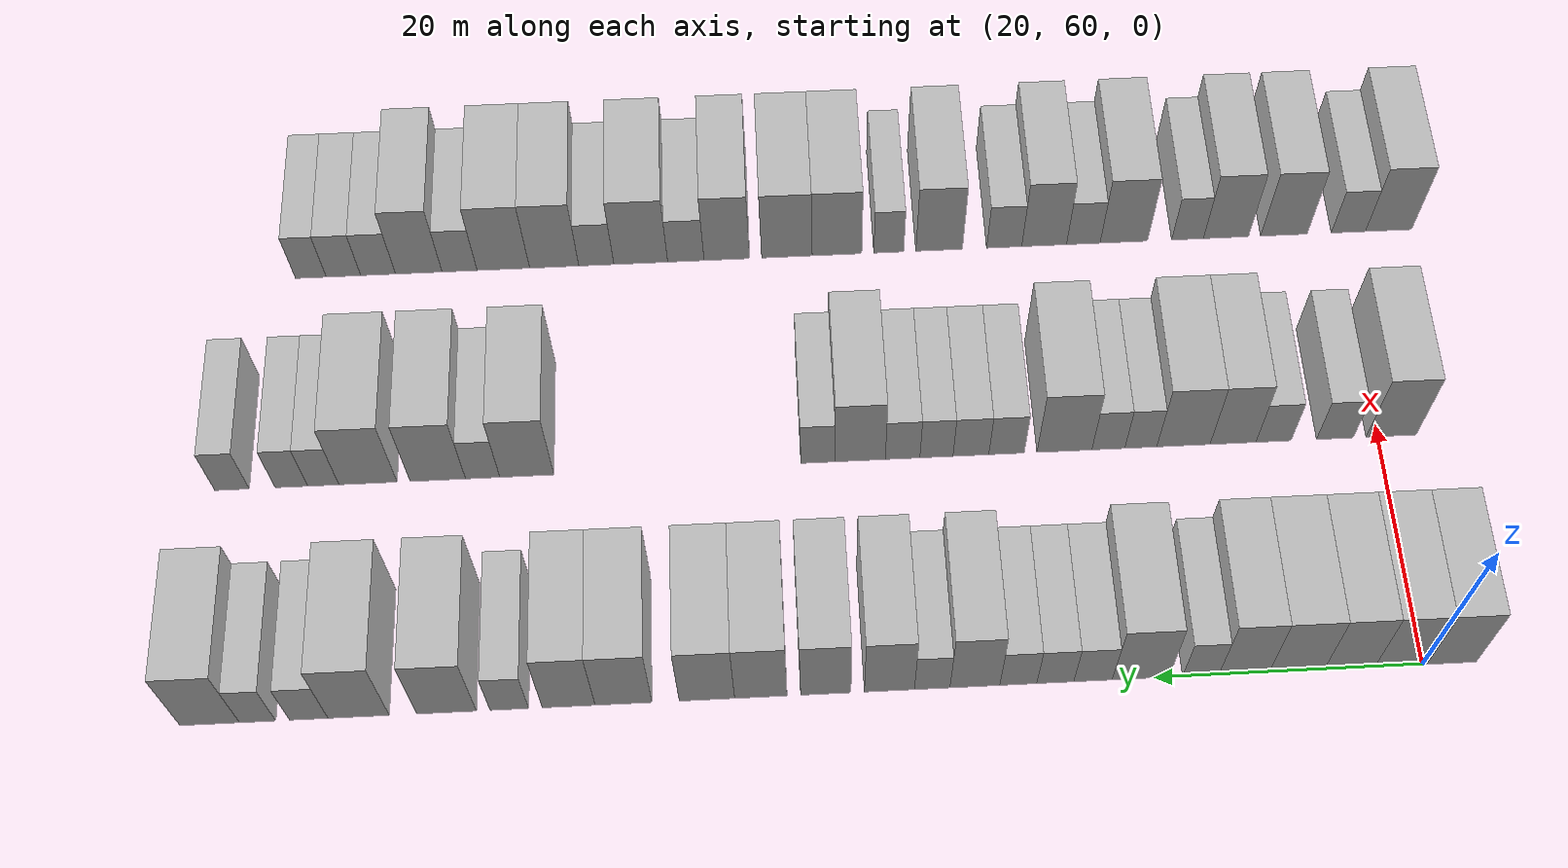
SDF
<sdf version="1.6">
 <world name="default">
  <model name="building_71">
   <static>1</static>
   <pose>25.0000 57.8908 0 0.000000 0.000000 0.000000</pose>
   <link name="link">
    <pose>0 0 4.50 0 0 0</pose>
    <collision name="collision"><geometry><box><size>10.0000 3.6938 9.0000</size></box></geometry></collision>
    <visual name="visual">
     <cast_shadows>0</cast_shadows>
     <geometry><box><size>10.0000 3.6938 9.0000</size></box></geometry>
     <material>
      <script>
       <uri>model://HANNAS_wall/materials/scripts</uri>
       <uri>model://HANNAS_wall/materials/textures</uri>
       <name>vrc/HANNAS_wall</name>
      </script>
     </material>
    </visual>
   </link>
  </model>
  <model name="building_72">
   <static>1</static>
   <pose>25.0000 61.6819 0 0.000000 0.000000 0.000000</pose>
   <link name="link">
    <pose>0 0 4.50 0 0 0</pose>
    <collision name="collision"><geometry><box><size>10.0000 3.8883 9.0000</size></box></geometry></collision>
    <visual name="visual">
     <cast_shadows>0</cast_shadows>
     <geometry><box><size>10.0000 3.8883 9.0000</size></box></geometry>
     <material>
      <script>
       <uri>model://HANNAS_wall/materials/scripts</uri>
       <uri>model://HANNAS_wall/materials/textures</uri>
       <name>vrc/HANNAS_wall</name>
      </script>
     </material>
    </visual>
   </link>
  </model>
  <model name="building_73">
   <static>1</static>
   <pose>25.0000 65.5108 0 0.000000 0.000000 0.000000</pose>
   <link name="link">
    <pose>0 0 4.50 0 0 0</pose>
    <collision name="collision"><geometry><box><size>10.0000 3.7694 9.0000</size></box></geometry></collision>
    <visual name="visual">
     <cast_shadows>0</cast_shadows>
     <geometry><box><size>10.0000 3.7694 9.0000</size></box></geometry>
     <material>
      <script>
       <uri>model://HANNAS_wall/materials/scripts</uri>
       <uri>model://HANNAS_wall/materials/textures</uri>
       <name>vrc/HANNAS_wall</name>
      </script>
     </material>
    </visual>
   </link>
  </model>
  <model name="building_74">
   <static>1</static>
   <pose>25.0000 69.4506 0 0.000000 0.000000 0.000000</pose>
   <link name="link">
    <pose>0 0 4.50 0 0 0</pose>
    <collision name="collision"><geometry><box><size>10.0000 4.1102 9.0000</size></box></geometry></collision>
    <visual name="visual">
     <cast_shadows>0</cast_shadows>
     <geometry><box><size>10.0000 4.1102 9.0000</size></box></geometry>
     <material>
      <script>
       <uri>model://HANNAS_wall/materials/scripts</uri>
       <uri>model://HANNAS_wall/materials/textures</uri>
       <name>vrc/HANNAS_wall</name>
      </script>
     </material>
    </visual>
   </link>
  </model>
  <model name="building_75">
   <static>1</static>
   <pose>25.0000 73.3711 0 0.000000 0.000000 0.000000</pose>
   <link name="link">
    <pose>0 0 4.50 0 0 0</pose>
    <collision name="collision"><geometry><box><size>10.0000 3.7309 9.0000</size></box></geometry></collision>
    <visual name="visual">
     <cast_shadows>0</cast_shadows>
     <geometry><box><size>10.0000 3.7309 9.0000</size></box></geometry>
     <material>
      <script>
       <uri>model://HANNAS_wall/materials/scripts</uri>
       <uri>model://HANNAS_wall/materials/textures</uri>
       <name>vrc/HANNAS_wall</name>
      </script>
     </material>
    </visual>
   </link>
  </model>
  <model name="building_76">
   <static>1</static>
   <pose>25.0000 76.5821 0 0.000000 0.000000 0.000000</pose>
   <link name="link">
    <pose>0 0 3.00 0 0 0</pose>
    <collision name="collision"><geometry><box><size>10.0000 2.6911 6.0000</size></box></geometry></collision>
    <visual name="visual">
     <cast_shadows>0</cast_shadows>
     <geometry><box><size>10.0000 2.6911 6.0000</size></box></geometry>
     <material>
      <script>
       <uri>model://HANNAS_wall/materials/scripts</uri>
       <uri>model://HANNAS_wall/materials/textures</uri>
       <name>vrc/HANNAS_wall</name>
      </script>
     </material>
    </visual>
   </link>
  </model>
  <model name="building_77">
   <static>1</static>
   <pose>25.0000 81.0387 0 0.000000 0.000000 0.000000</pose>
   <link name="link">
    <pose>0 0 4.50 0 0 0</pose>
    <collision name="collision"><geometry><box><size>10.0000 4.2220 9.0000</size></box></geometry></collision>
    <visual name="visual">
     <cast_shadows>0</cast_shadows>
     <geometry><box><size>10.0000 4.2220 9.0000</size></box></geometry>
     <material>
      <script>
       <uri>model://HANNAS_wall/materials/scripts</uri>
       <uri>model://HANNAS_wall/materials/textures</uri>
       <name>vrc/HANNAS_wall</name>
      </script>
     </material>
    </visual>
   </link>
  </model>
  <model name="building_78">
   <static>1</static>
   <pose>25.0000 84.5726 0 0.000000 0.000000 0.000000</pose>
   <link name="link">
    <pose>0 0 3.00 0 0 0</pose>
    <collision name="collision"><geometry><box><size>10.0000 2.8459 6.0000</size></box></geometry></collision>
    <visual name="visual">
     <cast_shadows>0</cast_shadows>
     <geometry><box><size>10.0000 2.8459 6.0000</size></box></geometry>
     <material>
      <script>
       <uri>model://HANNAS_wall/materials/scripts</uri>
       <uri>model://HANNAS_wall/materials/textures</uri>
       <name>vrc/HANNAS_wall</name>
      </script>
     </material>
    </visual>
   </link>
  </model>
  <model name="building_79">
   <static>1</static>
   <pose>25.0000 87.3659 0 0.000000 0.000000 0.000000</pose>
   <link name="link">
    <pose>0 0 3.00 0 0 0</pose>
    <collision name="collision"><geometry><box><size>10.0000 2.7407 6.0000</size></box></geometry></collision>
    <visual name="visual">
     <cast_shadows>0</cast_shadows>
     <geometry><box><size>10.0000 2.7407 6.0000</size></box></geometry>
     <material>
      <script>
       <uri>model://HANNAS_wall/materials/scripts</uri>
       <uri>model://HANNAS_wall/materials/textures</uri>
       <name>vrc/HANNAS_wall</name>
      </script>
     </material>
    </visual>
   </link>
  </model>
  <model name="building_80">
   <static>1</static>
   <pose>25.0000 90.1047 0 0.000000 0.000000 0.000000</pose>
   <link name="link">
    <pose>0 0 3.00 0 0 0</pose>
    <collision name="collision"><geometry><box><size>10.0000 2.7368 6.0000</size></box></geometry></collision>
    <visual name="visual">
     <cast_shadows>0</cast_shadows>
     <geometry><box><size>10.0000 2.7368 6.0000</size></box></geometry>
     <material>
      <script>
       <uri>model://HANNAS_wall/materials/scripts</uri>
       <uri>model://HANNAS_wall/materials/textures</uri>
       <name>vrc/HANNAS_wall</name>
      </script>
     </material>
    </visual>
   </link>
  </model>
  <model name="building_81">
   <static>1</static>
   <pose>25.0000 93.3152 0 0.000000 0.000000 0.000000</pose>
   <link name="link">
    <pose>0 0 4.50 0 0 0</pose>
    <collision name="collision"><geometry><box><size>10.0000 3.6842 9.0000</size></box></geometry></collision>
    <visual name="visual">
     <cast_shadows>0</cast_shadows>
     <geometry><box><size>10.0000 3.6842 9.0000</size></box></geometry>
     <material>
      <script>
       <uri>model://HANNAS_wall/materials/scripts</uri>
       <uri>model://HANNAS_wall/materials/textures</uri>
       <name>vrc/HANNAS_wall</name>
      </script>
     </material>
    </visual>
   </link>
  </model>
  <model name="building_82">
   <static>1</static>
   <pose>25.0000 96.4642 0 0.000000 0.000000 0.000000</pose>
   <link name="link">
    <pose>0 0 3.00 0 0 0</pose>
    <collision name="collision"><geometry><box><size>10.0000 2.6138 6.0000</size></box></geometry></collision>
    <visual name="visual">
     <cast_shadows>0</cast_shadows>
     <geometry><box><size>10.0000 2.6138 6.0000</size></box></geometry>
     <material>
      <script>
       <uri>model://HANNAS_wall/materials/scripts</uri>
       <uri>model://HANNAS_wall/materials/textures</uri>
       <name>vrc/HANNAS_wall</name>
      </script>
     </material>
    </visual>
   </link>
  </model>
  <model name="building_83">
   <static>1</static>
   <pose>25.0000 99.6112 0 0.000000 0.000000 0.000000</pose>
   <link name="link">
    <pose>0 0 4.50 0 0 0</pose>
    <collision name="collision"><geometry><box><size>10.0000 3.6802 9.0000</size></box></geometry></collision>
    <visual name="visual">
     <cast_shadows>0</cast_shadows>
     <geometry><box><size>10.0000 3.6802 9.0000</size></box></geometry>
     <material>
      <script>
       <uri>model://HANNAS_wall/materials/scripts</uri>
       <uri>model://HANNAS_wall/materials/textures</uri>
       <name>vrc/HANNAS_wall</name>
      </script>
     </material>
    </visual>
   </link>
  </model>
  <model name="building_84">
   <static>1</static>
   <pose>25.0000 104.2968 0 0.000000 0.000000 0.000000</pose>
   <link name="link">
    <pose>0 0 4.50 0 0 0</pose>
    <collision name="collision"><geometry><box><size>10.0000 3.6910 9.0000</size></box></geometry></collision>
    <visual name="visual">
     <cast_shadows>0</cast_shadows>
     <geometry><box><size>10.0000 3.6910 9.0000</size></box></geometry>
     <material>
      <script>
       <uri>model://HANNAS_wall/materials/scripts</uri>
       <uri>model://HANNAS_wall/materials/textures</uri>
       <name>vrc/HANNAS_wall</name>
      </script>
     </material>
    </visual>
   </link>
  </model>
  <model name="building_85">
   <static>1</static>
   <pose>25.0000 109.0696 0 0.000000 0.000000 0.000000</pose>
   <link name="link">
    <pose>0 0 4.50 0 0 0</pose>
    <collision name="collision"><geometry><box><size>10.0000 3.8547 9.0000</size></box></geometry></collision>
    <visual name="visual">
     <cast_shadows>0</cast_shadows>
     <geometry><box><size>10.0000 3.8547 9.0000</size></box></geometry>
     <material>
      <script>
       <uri>model://HANNAS_wall/materials/scripts</uri>
       <uri>model://HANNAS_wall/materials/textures</uri>
       <name>vrc/HANNAS_wall</name>
      </script>
     </material>
    </visual>
   </link>
  </model>
  <model name="building_86">
   <static>1</static>
   <pose>25.0000 113.0264 0 0.000000 0.000000 0.000000</pose>
   <link name="link">
    <pose>0 0 4.50 0 0 0</pose>
    <collision name="collision"><geometry><box><size>10.0000 4.0589 9.0000</size></box></geometry></collision>
    <visual name="visual">
     <cast_shadows>0</cast_shadows>
     <geometry><box><size>10.0000 4.0589 9.0000</size></box></geometry>
     <material>
      <script>
       <uri>model://HANNAS_wall/materials/scripts</uri>
       <uri>model://HANNAS_wall/materials/textures</uri>
       <name>vrc/HANNAS_wall</name>
      </script>
     </material>
    </visual>
   </link>
  </model>
  <model name="building_87">
   <static>1</static>
   <pose>25.0000 119.1386 0 0.000000 0.000000 0.000000</pose>
   <link name="link">
    <pose>0 0 4.50 0 0 0</pose>
    <collision name="collision"><geometry><box><size>10.0000 4.1654 9.0000</size></box></geometry></collision>
    <visual name="visual">
     <cast_shadows>0</cast_shadows>
     <geometry><box><size>10.0000 4.1654 9.0000</size></box></geometry>
     <material>
      <script>
       <uri>model://HANNAS_wall/materials/scripts</uri>
       <uri>model://HANNAS_wall/materials/textures</uri>
       <name>vrc/HANNAS_wall</name>
      </script>
     </material>
    </visual>
   </link>
  </model>
  <model name="building_88">
   <static>1</static>
   <pose>25.0000 123.1504 0 0.000000 0.000000 0.000000</pose>
   <link name="link">
    <pose>0 0 4.50 0 0 0</pose>
    <collision name="collision"><geometry><box><size>10.0000 3.8581 9.0000</size></box></geometry></collision>
    <visual name="visual">
     <cast_shadows>0</cast_shadows>
     <geometry><box><size>10.0000 3.8581 9.0000</size></box></geometry>
     <material>
      <script>
       <uri>model://HANNAS_wall/materials/scripts</uri>
       <uri>model://HANNAS_wall/materials/textures</uri>
       <name>vrc/HANNAS_wall</name>
      </script>
     </material>
    </visual>
   </link>
  </model>
  <model name="building_89">
   <static>1</static>
   <pose>25.0000 127.4863 0 0.000000 0.000000 0.000000</pose>
   <link name="link">
    <pose>0 0 3.00 0 0 0</pose>
    <collision name="collision"><geometry><box><size>10.0000 2.8137 6.0000</size></box></geometry></collision>
    <visual name="visual">
     <cast_shadows>0</cast_shadows>
     <geometry><box><size>10.0000 2.8137 6.0000</size></box></geometry>
     <material>
      <script>
       <uri>model://HANNAS_wall/materials/scripts</uri>
       <uri>model://HANNAS_wall/materials/textures</uri>
       <name>vrc/HANNAS_wall</name>
      </script>
     </material>
    </visual>
   </link>
  </model>
  <model name="building_90">
   <static>1</static>
   <pose>25.0000 132.0710 0 0.000000 0.000000 0.000000</pose>
   <link name="link">
    <pose>0 0 4.50 0 0 0</pose>
    <collision name="collision"><geometry><box><size>10.0000 4.3558 9.0000</size></box></geometry></collision>
    <visual name="visual">
     <cast_shadows>0</cast_shadows>
     <geometry><box><size>10.0000 4.3558 9.0000</size></box></geometry>
     <material>
      <script>
       <uri>model://HANNAS_wall/materials/scripts</uri>
       <uri>model://HANNAS_wall/materials/textures</uri>
       <name>vrc/HANNAS_wall</name>
      </script>
     </material>
    </visual>
   </link>
  </model>
  <model name="building_91">
   <static>1</static>
   <pose>25.0000 138.4762 0 0.000000 0.000000 0.000000</pose>
   <link name="link">
    <pose>0 0 4.50 0 0 0</pose>
    <collision name="collision"><geometry><box><size>10.0000 4.4545 9.0000</size></box></geometry></collision>
    <visual name="visual">
     <cast_shadows>0</cast_shadows>
     <geometry><box><size>10.0000 4.4545 9.0000</size></box></geometry>
     <material>
      <script>
       <uri>model://HANNAS_wall/materials/scripts</uri>
       <uri>model://HANNAS_wall/materials/textures</uri>
       <name>vrc/HANNAS_wall</name>
      </script>
     </material>
    </visual>
   </link>
  </model>
  <model name="building_92">
   <static>1</static>
   <pose>25.0000 142.1031 0 0.000000 0.000000 0.000000</pose>
   <link name="link">
    <pose>0 0 3.00 0 0 0</pose>
    <collision name="collision"><geometry><box><size>10.0000 2.7995 6.0000</size></box></geometry></collision>
    <visual name="visual">
     <cast_shadows>0</cast_shadows>
     <geometry><box><size>10.0000 2.7995 6.0000</size></box></geometry>
     <material>
      <script>
       <uri>model://HANNAS_wall/materials/scripts</uri>
       <uri>model://HANNAS_wall/materials/textures</uri>
       <name>vrc/HANNAS_wall</name>
      </script>
     </material>
    </visual>
   </link>
  </model>
  <model name="building_93">
   <static>1</static>
   <pose>25.0000 145.8149 0 0.000000 0.000000 0.000000</pose>
   <link name="link">
    <pose>0 0 3.00 0 0 0</pose>
    <collision name="collision"><geometry><box><size>10.0000 2.6241 6.0000</size></box></geometry></collision>
    <visual name="visual">
     <cast_shadows>0</cast_shadows>
     <geometry><box><size>10.0000 2.6241 6.0000</size></box></geometry>
     <material>
      <script>
       <uri>model://HANNAS_wall/materials/scripts</uri>
       <uri>model://HANNAS_wall/materials/textures</uri>
       <name>vrc/HANNAS_wall</name>
      </script>
     </material>
    </visual>
   </link>
  </model>
  <model name="building_94">
   <static>1</static>
   <pose>25.0000 149.2840 0 0.000000 0.000000 0.000000</pose>
   <link name="link">
    <pose>0 0 4.50 0 0 0</pose>
    <collision name="collision"><geometry><box><size>10.0000 4.3140 9.0000</size></box></geometry></collision>
    <visual name="visual">
     <cast_shadows>0</cast_shadows>
     <geometry><box><size>10.0000 4.3140 9.0000</size></box></geometry>
     <material>
      <script>
       <uri>model://HANNAS_wall/materials/scripts</uri>
       <uri>model://HANNAS_wall/materials/textures</uri>
       <name>vrc/HANNAS_wall</name>
      </script>
     </material>
    </visual>
   </link>
  </model>
  <model name="building_182">
   <static>1</static>
   <pose>44.0000 58.9594 0 0.000000 0.000000 0.000000</pose>
   <link name="link">
    <pose>0 0 4.50 0 0 0</pose>
    <collision name="collision"><geometry><box><size>10.0000 3.9770 9.0000</size></box></geometry></collision>
    <visual name="visual">
     <cast_shadows>0</cast_shadows>
     <geometry><box><size>10.0000 3.9770 9.0000</size></box></geometry>
     <material>
      <script>
       <uri>model://HANNAS_wall/materials/scripts</uri>
       <uri>model://HANNAS_wall/materials/textures</uri>
       <name>vrc/HANNAS_wall</name>
      </script>
     </material>
    </visual>
   </link>
  </model>
  <model name="building_183">
   <static>1</static>
   <pose>44.0000 63.3999 0 0.000000 0.000000 0.000000</pose>
   <link name="link">
    <pose>0 0 3.00 0 0 0</pose>
    <collision name="collision"><geometry><box><size>10.0000 2.9041 6.0000</size></box></geometry></collision>
    <visual name="visual">
     <cast_shadows>0</cast_shadows>
     <geometry><box><size>10.0000 2.9041 6.0000</size></box></geometry>
     <material>
      <script>
       <uri>model://HANNAS_wall/materials/scripts</uri>
       <uri>model://HANNAS_wall/materials/textures</uri>
       <name>vrc/HANNAS_wall</name>
      </script>
     </material>
    </visual>
   </link>
  </model>
  <model name="building_184">
   <static>1</static>
   <pose>44.0000 68.2413 0 0.000000 0.000000 0.000000</pose>
   <link name="link">
    <pose>0 0 3.00 0 0 0</pose>
    <collision name="collision"><geometry><box><size>10.0000 2.7786 6.0000</size></box></geometry></collision>
    <visual name="visual">
     <cast_shadows>0</cast_shadows>
     <geometry><box><size>10.0000 2.7786 6.0000</size></box></geometry>
     <material>
      <script>
       <uri>model://HANNAS_wall/materials/scripts</uri>
       <uri>model://HANNAS_wall/materials/textures</uri>
       <name>vrc/HANNAS_wall</name>
      </script>
     </material>
    </visual>
   </link>
  </model>
  <model name="building_185">
   <static>1</static>
   <pose>44.0000 71.4363 0 0.000000 0.000000 0.000000</pose>
   <link name="link">
    <pose>0 0 4.50 0 0 0</pose>
    <collision name="collision"><geometry><box><size>10.0000 3.6115 9.0000</size></box></geometry></collision>
    <visual name="visual">
     <cast_shadows>0</cast_shadows>
     <geometry><box><size>10.0000 3.6115 9.0000</size></box></geometry>
     <material>
      <script>
       <uri>model://HANNAS_wall/materials/scripts</uri>
       <uri>model://HANNAS_wall/materials/textures</uri>
       <name>vrc/HANNAS_wall</name>
      </script>
     </material>
    </visual>
   </link>
  </model>
  <model name="building_186">
   <static>1</static>
   <pose>44.0000 75.3368 0 0.000000 0.000000 0.000000</pose>
   <link name="link">
    <pose>0 0 4.50 0 0 0</pose>
    <collision name="collision"><geometry><box><size>10.0000 4.1895 9.0000</size></box></geometry></collision>
    <visual name="visual">
     <cast_shadows>0</cast_shadows>
     <geometry><box><size>10.0000 4.1895 9.0000</size></box></geometry>
     <material>
      <script>
       <uri>model://HANNAS_wall/materials/scripts</uri>
       <uri>model://HANNAS_wall/materials/textures</uri>
       <name>vrc/HANNAS_wall</name>
      </script>
     </material>
    </visual>
   </link>
  </model>
  <model name="building_187">
   <static>1</static>
   <pose>44.0000 78.6893 0 0.000000 0.000000 0.000000</pose>
   <link name="link">
    <pose>0 0 3.00 0 0 0</pose>
    <collision name="collision"><geometry><box><size>10.0000 2.5155 6.0000</size></box></geometry></collision>
    <visual name="visual">
     <cast_shadows>0</cast_shadows>
     <geometry><box><size>10.0000 2.5155 6.0000</size></box></geometry>
     <material>
      <script>
       <uri>model://HANNAS_wall/materials/scripts</uri>
       <uri>model://HANNAS_wall/materials/textures</uri>
       <name>vrc/HANNAS_wall</name>
      </script>
     </material>
    </visual>
   </link>
  </model>
  <model name="building_188">
   <static>1</static>
   <pose>44.0000 81.2371 0 0.000000 0.000000 0.000000</pose>
   <link name="link">
    <pose>0 0 3.00 0 0 0</pose>
    <collision name="collision"><geometry><box><size>10.0000 2.5800 6.0000</size></box></geometry></collision>
    <visual name="visual">
     <cast_shadows>0</cast_shadows>
     <geometry><box><size>10.0000 2.5800 6.0000</size></box></geometry>
     <material>
      <script>
       <uri>model://HANNAS_wall/materials/scripts</uri>
       <uri>model://HANNAS_wall/materials/textures</uri>
       <name>vrc/HANNAS_wall</name>
      </script>
     </material>
    </visual>
   </link>
  </model>
  <model name="building_189">
   <static>1</static>
   <pose>44.0000 84.6793 0 0.000000 0.000000 0.000000</pose>
   <link name="link">
    <pose>0 0 4.50 0 0 0</pose>
    <collision name="collision"><geometry><box><size>10.0000 4.3045 9.0000</size></box></geometry></collision>
    <visual name="visual">
     <cast_shadows>0</cast_shadows>
     <geometry><box><size>10.0000 4.3045 9.0000</size></box></geometry>
     <material>
      <script>
       <uri>model://HANNAS_wall/materials/scripts</uri>
       <uri>model://HANNAS_wall/materials/textures</uri>
       <name>vrc/HANNAS_wall</name>
      </script>
     </material>
    </visual>
   </link>
  </model>
  <model name="building_190">
   <static>1</static>
   <pose>44.0000 89.2193 0 0.000000 0.000000 0.000000</pose>
   <link name="link">
    <pose>0 0 3.00 0 0 0</pose>
    <collision name="collision"><geometry><box><size>10.0000 2.7755 6.0000</size></box></geometry></collision>
    <visual name="visual">
     <cast_shadows>0</cast_shadows>
     <geometry><box><size>10.0000 2.7755 6.0000</size></box></geometry>
     <material>
      <script>
       <uri>model://HANNAS_wall/materials/scripts</uri>
       <uri>model://HANNAS_wall/materials/textures</uri>
       <name>vrc/HANNAS_wall</name>
      </script>
     </material>
    </visual>
   </link>
  </model>
  <model name="building_191">
   <static>1</static>
   <pose>44.0000 92.0087 0 0.000000 0.000000 0.000000</pose>
   <link name="link">
    <pose>0 0 3.00 0 0 0</pose>
    <collision name="collision"><geometry><box><size>10.0000 2.8034 6.0000</size></box></geometry></collision>
    <visual name="visual">
     <cast_shadows>0</cast_shadows>
     <geometry><box><size>10.0000 2.8034 6.0000</size></box></geometry>
     <material>
      <script>
       <uri>model://HANNAS_wall/materials/scripts</uri>
       <uri>model://HANNAS_wall/materials/textures</uri>
       <name>vrc/HANNAS_wall</name>
      </script>
     </material>
    </visual>
   </link>
  </model>
  <model name="building_192">
   <static>1</static>
   <pose>44.0000 94.7046 0 0.000000 0.000000 0.000000</pose>
   <link name="link">
    <pose>0 0 3.00 0 0 0</pose>
    <collision name="collision"><geometry><box><size>10.0000 2.5883 6.0000</size></box></geometry></collision>
    <visual name="visual">
     <cast_shadows>0</cast_shadows>
     <geometry><box><size>10.0000 2.5883 6.0000</size></box></geometry>
     <material>
      <script>
       <uri>model://HANNAS_wall/materials/scripts</uri>
       <uri>model://HANNAS_wall/materials/textures</uri>
       <name>vrc/HANNAS_wall</name>
      </script>
     </material>
    </visual>
   </link>
  </model>
  <model name="building_193">
   <static>1</static>
   <pose>44.0000 97.3481 0 0.000000 0.000000 0.000000</pose>
   <link name="link">
    <pose>0 0 3.00 0 0 0</pose>
    <collision name="collision"><geometry><box><size>10.0000 2.6987 6.0000</size></box></geometry></collision>
    <visual name="visual">
     <cast_shadows>0</cast_shadows>
     <geometry><box><size>10.0000 2.6987 6.0000</size></box></geometry>
     <material>
      <script>
       <uri>model://HANNAS_wall/materials/scripts</uri>
       <uri>model://HANNAS_wall/materials/textures</uri>
       <name>vrc/HANNAS_wall</name>
      </script>
     </material>
    </visual>
   </link>
  </model>
  <model name="building_194">
   <static>1</static>
   <pose>44.0000 100.6463 0 0.000000 0.000000 0.000000</pose>
   <link name="link">
    <pose>0 0 4.50 0 0 0</pose>
    <collision name="collision"><geometry><box><size>10.0000 3.8978 9.0000</size></box></geometry></collision>
    <visual name="visual">
     <cast_shadows>0</cast_shadows>
     <geometry><box><size>10.0000 3.8978 9.0000</size></box></geometry>
     <material>
      <script>
       <uri>model://HANNAS_wall/materials/scripts</uri>
       <uri>model://HANNAS_wall/materials/textures</uri>
       <name>vrc/HANNAS_wall</name>
      </script>
     </material>
    </visual>
   </link>
  </model>
  <model name="building_195">
   <static>1</static>
   <pose>44.0000 103.9340 0 0.000000 0.000000 0.000000</pose>
   <link name="link">
    <pose>0 0 3.00 0 0 0</pose>
    <collision name="collision"><geometry><box><size>10.0000 2.6776 6.0000</size></box></geometry></collision>
    <visual name="visual">
     <cast_shadows>0</cast_shadows>
     <geometry><box><size>10.0000 2.6776 6.0000</size></box></geometry>
     <material>
      <script>
       <uri>model://HANNAS_wall/materials/scripts</uri>
       <uri>model://HANNAS_wall/materials/textures</uri>
       <name>vrc/HANNAS_wall</name>
      </script>
     </material>
    </visual>
   </link>
  </model>
  <model name="building_196">
   <static>1</static>
   <pose>44.0000 126.5527 0 0.000000 0.000000 0.000000</pose>
   <link name="link">
    <pose>0 0 4.50 0 0 0</pose>
    <collision name="collision"><geometry><box><size>10.0000 4.1866 9.0000</size></box></geometry></collision>
    <visual name="visual">
     <cast_shadows>0</cast_shadows>
     <geometry><box><size>10.0000 4.1866 9.0000</size></box></geometry>
     <material>
      <script>
       <uri>model://HANNAS_wall/materials/scripts</uri>
       <uri>model://HANNAS_wall/materials/textures</uri>
       <name>vrc/HANNAS_wall</name>
      </script>
     </material>
    </visual>
   </link>
  </model>
  <model name="building_197">
   <static>1</static>
   <pose>44.0000 129.9693 0 0.000000 0.000000 0.000000</pose>
   <link name="link">
    <pose>0 0 3.00 0 0 0</pose>
    <collision name="collision"><geometry><box><size>10.0000 2.6466 6.0000</size></box></geometry></collision>
    <visual name="visual">
     <cast_shadows>0</cast_shadows>
     <geometry><box><size>10.0000 2.6466 6.0000</size></box></geometry>
     <material>
      <script>
       <uri>model://HANNAS_wall/materials/scripts</uri>
       <uri>model://HANNAS_wall/materials/textures</uri>
       <name>vrc/HANNAS_wall</name>
      </script>
     </material>
    </visual>
   </link>
  </model>
  <model name="building_198">
   <static>1</static>
   <pose>44.0000 133.4371 0 0.000000 0.000000 0.000000</pose>
   <link name="link">
    <pose>0 0 4.50 0 0 0</pose>
    <collision name="collision"><geometry><box><size>10.0000 4.2891 9.0000</size></box></geometry></collision>
    <visual name="visual">
     <cast_shadows>0</cast_shadows>
     <geometry><box><size>10.0000 4.2891 9.0000</size></box></geometry>
     <material>
      <script>
       <uri>model://HANNAS_wall/materials/scripts</uri>
       <uri>model://HANNAS_wall/materials/textures</uri>
       <name>vrc/HANNAS_wall</name>
      </script>
     </material>
    </visual>
   </link>
  </model>
  <model name="building_199">
   <static>1</static>
   <pose>44.0000 138.8221 0 0.000000 0.000000 0.000000</pose>
   <link name="link">
    <pose>0 0 4.50 0 0 0</pose>
    <collision name="collision"><geometry><box><size>10.0000 4.4808 9.0000</size></box></geometry></collision>
    <visual name="visual">
     <cast_shadows>0</cast_shadows>
     <geometry><box><size>10.0000 4.4808 9.0000</size></box></geometry>
     <material>
      <script>
       <uri>model://HANNAS_wall/materials/scripts</uri>
       <uri>model://HANNAS_wall/materials/textures</uri>
       <name>vrc/HANNAS_wall</name>
      </script>
     </material>
    </visual>
   </link>
  </model>
  <model name="building_200">
   <static>1</static>
   <pose>44.0000 142.2736 0 0.000000 0.000000 0.000000</pose>
   <link name="link">
    <pose>0 0 3.00 0 0 0</pose>
    <collision name="collision"><geometry><box><size>10.0000 2.4222 6.0000</size></box></geometry></collision>
    <visual name="visual">
     <cast_shadows>0</cast_shadows>
     <geometry><box><size>10.0000 2.4222 6.0000</size></box></geometry>
     <material>
      <script>
       <uri>model://HANNAS_wall/materials/scripts</uri>
       <uri>model://HANNAS_wall/materials/textures</uri>
       <name>vrc/HANNAS_wall</name>
      </script>
     </material>
    </visual>
   </link>
  </model>
  <model name="building_201">
   <static>1</static>
   <pose>44.0000 144.7290 0 0.000000 0.000000 0.000000</pose>
   <link name="link">
    <pose>0 0 3.00 0 0 0</pose>
    <collision name="collision"><geometry><box><size>10.0000 2.4887 6.0000</size></box></geometry></collision>
    <visual name="visual">
     <cast_shadows>0</cast_shadows>
     <geometry><box><size>10.0000 2.4887 6.0000</size></box></geometry>
     <material>
      <script>
       <uri>model://HANNAS_wall/materials/scripts</uri>
       <uri>model://HANNAS_wall/materials/textures</uri>
       <name>vrc/HANNAS_wall</name>
      </script>
     </material>
    </visual>
   </link>
  </model>
  <model name="building_202">
   <static>1</static>
   <pose>44.0000 149.2966 0 0.000000 0.000000 0.000000</pose>
   <link name="link">
    <pose>0 0 3.00 0 0 0</pose>
    <collision name="collision"><geometry><box><size>10.0000 2.6465 6.0000</size></box></geometry></collision>
    <visual name="visual">
     <cast_shadows>0</cast_shadows>
     <geometry><box><size>10.0000 2.6465 6.0000</size></box></geometry>
     <material>
      <script>
       <uri>model://HANNAS_wall/materials/scripts</uri>
       <uri>model://HANNAS_wall/materials/textures</uri>
       <name>vrc/HANNAS_wall</name>
      </script>
     </material>
    </visual>
   </link>
  </model>
  <model name="building_296">
   <static>1</static>
   <pose>63.0000 55.7183 0 0.000000 0.000000 0.000000</pose>
   <link name="link">
    <pose>0 0 4.50 0 0 0</pose>
    <collision name="collision"><geometry><box><size>10.0000 3.8667 9.0000</size></box></geometry></collision>
    <visual name="visual">
     <cast_shadows>0</cast_shadows>
     <geometry><box><size>10.0000 3.8667 9.0000</size></box></geometry>
     <material>
      <script>
       <uri>model://HANNAS_wall/materials/scripts</uri>
       <uri>model://HANNAS_wall/materials/textures</uri>
       <name>vrc/HANNAS_wall</name>
      </script>
     </material>
    </visual>
   </link>
  </model>
  <model name="building_297">
   <static>1</static>
   <pose>63.0000 59.0751 0 0.000000 0.000000 0.000000</pose>
   <link name="link">
    <pose>0 0 3.00 0 0 0</pose>
    <collision name="collision"><geometry><box><size>10.0000 2.8471 6.0000</size></box></geometry></collision>
    <visual name="visual">
     <cast_shadows>0</cast_shadows>
     <geometry><box><size>10.0000 2.8471 6.0000</size></box></geometry>
     <material>
      <script>
       <uri>model://HANNAS_wall/materials/scripts</uri>
       <uri>model://HANNAS_wall/materials/textures</uri>
       <name>vrc/HANNAS_wall</name>
      </script>
     </material>
    </visual>
   </link>
  </model>
  <model name="building_298">
   <static>1</static>
   <pose>63.0000 64.4396 0 0.000000 0.000000 0.000000</pose>
   <link name="link">
    <pose>0 0 4.50 0 0 0</pose>
    <collision name="collision"><geometry><box><size>10.0000 3.8817 9.0000</size></box></geometry></collision>
    <visual name="visual">
     <cast_shadows>0</cast_shadows>
     <geometry><box><size>10.0000 3.8817 9.0000</size></box></geometry>
     <material>
      <script>
       <uri>model://HANNAS_wall/materials/scripts</uri>
       <uri>model://HANNAS_wall/materials/textures</uri>
       <name>vrc/HANNAS_wall</name>
      </script>
     </material>
    </visual>
   </link>
  </model>
  <model name="building_299">
   <static>1</static>
   <pose>63.0000 69.2629 0 0.000000 0.000000 0.000000</pose>
   <link name="link">
    <pose>0 0 4.50 0 0 0</pose>
    <collision name="collision"><geometry><box><size>10.0000 3.7650 9.0000</size></box></geometry></collision>
    <visual name="visual">
     <cast_shadows>0</cast_shadows>
     <geometry><box><size>10.0000 3.7650 9.0000</size></box></geometry>
     <material>
      <script>
       <uri>model://HANNAS_wall/materials/scripts</uri>
       <uri>model://HANNAS_wall/materials/textures</uri>
       <name>vrc/HANNAS_wall</name>
      </script>
     </material>
    </visual>
   </link>
  </model>
  <model name="building_300">
   <static>1</static>
   <pose>63.0000 72.4606 0 0.000000 0.000000 0.000000</pose>
   <link name="link">
    <pose>0 0 3.00 0 0 0</pose>
    <collision name="collision"><geometry><box><size>10.0000 2.6303 6.0000</size></box></geometry></collision>
    <visual name="visual">
     <cast_shadows>0</cast_shadows>
     <geometry><box><size>10.0000 2.6303 6.0000</size></box></geometry>
     <material>
      <script>
       <uri>model://HANNAS_wall/materials/scripts</uri>
       <uri>model://HANNAS_wall/materials/textures</uri>
       <name>vrc/HANNAS_wall</name>
      </script>
     </material>
    </visual>
   </link>
  </model>
  <model name="building_301">
   <static>1</static>
   <pose>63.0000 77.7441 0 0.000000 0.000000 0.000000</pose>
   <link name="link">
    <pose>0 0 4.50 0 0 0</pose>
    <collision name="collision"><geometry><box><size>10.0000 3.9368 9.0000</size></box></geometry></collision>
    <visual name="visual">
     <cast_shadows>0</cast_shadows>
     <geometry><box><size>10.0000 3.9368 9.0000</size></box></geometry>
     <material>
      <script>
       <uri>model://HANNAS_wall/materials/scripts</uri>
       <uri>model://HANNAS_wall/materials/textures</uri>
       <name>vrc/HANNAS_wall</name>
      </script>
     </material>
    </visual>
   </link>
  </model>
  <model name="building_302">
   <static>1</static>
   <pose>63.0000 81.1041 0 0.000000 0.000000 0.000000</pose>
   <link name="link">
    <pose>0 0 3.00 0 0 0</pose>
    <collision name="collision"><geometry><box><size>10.0000 2.7832 6.0000</size></box></geometry></collision>
    <visual name="visual">
     <cast_shadows>0</cast_shadows>
     <geometry><box><size>10.0000 2.7832 6.0000</size></box></geometry>
     <material>
      <script>
       <uri>model://HANNAS_wall/materials/scripts</uri>
       <uri>model://HANNAS_wall/materials/textures</uri>
       <name>vrc/HANNAS_wall</name>
      </script>
     </material>
    </visual>
   </link>
  </model>
  <model name="building_303">
   <static>1</static>
   <pose>63.0000 84.3511 0 0.000000 0.000000 0.000000</pose>
   <link name="link">
    <pose>0 0 4.50 0 0 0</pose>
    <collision name="collision"><geometry><box><size>10.0000 3.7109 9.0000</size></box></geometry></collision>
    <visual name="visual">
     <cast_shadows>0</cast_shadows>
     <geometry><box><size>10.0000 3.7109 9.0000</size></box></geometry>
     <material>
      <script>
       <uri>model://HANNAS_wall/materials/scripts</uri>
       <uri>model://HANNAS_wall/materials/textures</uri>
       <name>vrc/HANNAS_wall</name>
      </script>
     </material>
    </visual>
   </link>
  </model>
  <model name="building_304">
   <static>1</static>
   <pose>63.0000 87.6563 0 0.000000 0.000000 0.000000</pose>
   <link name="link">
    <pose>0 0 3.00 0 0 0</pose>
    <collision name="collision"><geometry><box><size>10.0000 2.8993 6.0000</size></box></geometry></collision>
    <visual name="visual">
     <cast_shadows>0</cast_shadows>
     <geometry><box><size>10.0000 2.8993 6.0000</size></box></geometry>
     <material>
      <script>
       <uri>model://HANNAS_wall/materials/scripts</uri>
       <uri>model://HANNAS_wall/materials/textures</uri>
       <name>vrc/HANNAS_wall</name>
      </script>
     </material>
    </visual>
   </link>
  </model>
  <model name="building_305">
   <static>1</static>
   <pose>63.0000 93.0292 0 0.000000 0.000000 0.000000</pose>
   <link name="link">
    <pose>0 0 4.50 0 0 0</pose>
    <collision name="collision"><geometry><box><size>10.0000 3.8465 9.0000</size></box></geometry></collision>
    <visual name="visual">
     <cast_shadows>0</cast_shadows>
     <geometry><box><size>10.0000 3.8465 9.0000</size></box></geometry>
     <material>
      <script>
       <uri>model://HANNAS_wall/materials/scripts</uri>
       <uri>model://HANNAS_wall/materials/textures</uri>
       <name>vrc/HANNAS_wall</name>
      </script>
     </material>
    </visual>
   </link>
  </model>
  <model name="building_306">
   <static>1</static>
   <pose>63.0000 97.1828 0 0.000000 0.000000 0.000000</pose>
   <link name="link">
    <pose>0 0 3.00 0 0 0</pose>
    <collision name="collision"><geometry><box><size>10.0000 2.4607 6.0000</size></box></geometry></collision>
    <visual name="visual">
     <cast_shadows>0</cast_shadows>
     <geometry><box><size>10.0000 2.4607 6.0000</size></box></geometry>
     <material>
      <script>
       <uri>model://HANNAS_wall/materials/scripts</uri>
       <uri>model://HANNAS_wall/materials/textures</uri>
       <name>vrc/HANNAS_wall</name>
      </script>
     </material>
    </visual>
   </link>
  </model>
  <model name="building_307">
   <static>1</static>
   <pose>63.0000 101.4527 0 0.000000 0.000000 0.000000</pose>
   <link name="link">
    <pose>0 0 4.50 0 0 0</pose>
    <collision name="collision"><geometry><box><size>10.0000 4.0789 9.0000</size></box></geometry></collision>
    <visual name="visual">
     <cast_shadows>0</cast_shadows>
     <geometry><box><size>10.0000 4.0789 9.0000</size></box></geometry>
     <material>
      <script>
       <uri>model://HANNAS_wall/materials/scripts</uri>
       <uri>model://HANNAS_wall/materials/textures</uri>
       <name>vrc/HANNAS_wall</name>
      </script>
     </material>
    </visual>
   </link>
  </model>
  <model name="building_308">
   <static>1</static>
   <pose>63.0000 105.5662 0 0.000000 0.000000 0.000000</pose>
   <link name="link">
    <pose>0 0 4.50 0 0 0</pose>
    <collision name="collision"><geometry><box><size>10.0000 4.1481 9.0000</size></box></geometry></collision>
    <visual name="visual">
     <cast_shadows>0</cast_shadows>
     <geometry><box><size>10.0000 4.1481 9.0000</size></box></geometry>
     <material>
      <script>
       <uri>model://HANNAS_wall/materials/scripts</uri>
       <uri>model://HANNAS_wall/materials/textures</uri>
       <name>vrc/HANNAS_wall</name>
      </script>
     </material>
    </visual>
   </link>
  </model>
  <model name="building_309">
   <static>1</static>
   <pose>63.0000 110.5108 0 0.000000 0.000000 0.000000</pose>
   <link name="link">
    <pose>0 0 4.50 0 0 0</pose>
    <collision name="collision"><geometry><box><size>10.0000 3.7410 9.0000</size></box></geometry></collision>
    <visual name="visual">
     <cast_shadows>0</cast_shadows>
     <geometry><box><size>10.0000 3.7410 9.0000</size></box></geometry>
     <material>
      <script>
       <uri>model://HANNAS_wall/materials/scripts</uri>
       <uri>model://HANNAS_wall/materials/textures</uri>
       <name>vrc/HANNAS_wall</name>
      </script>
     </material>
    </visual>
   </link>
  </model>
  <model name="building_310">
   <static>1</static>
   <pose>63.0000 113.8731 0 0.000000 0.000000 0.000000</pose>
   <link name="link">
    <pose>0 0 3.00 0 0 0</pose>
    <collision name="collision"><geometry><box><size>10.0000 2.9836 6.0000</size></box></geometry></collision>
    <visual name="visual">
     <cast_shadows>0</cast_shadows>
     <geometry><box><size>10.0000 2.9836 6.0000</size></box></geometry>
     <material>
      <script>
       <uri>model://HANNAS_wall/materials/scripts</uri>
       <uri>model://HANNAS_wall/materials/textures</uri>
       <name>vrc/HANNAS_wall</name>
      </script>
     </material>
    </visual>
   </link>
  </model>
  <model name="building_311">
   <static>1</static>
   <pose>63.0000 117.5691 0 0.000000 0.000000 0.000000</pose>
   <link name="link">
    <pose>0 0 4.50 0 0 0</pose>
    <collision name="collision"><geometry><box><size>10.0000 4.4086 9.0000</size></box></geometry></collision>
    <visual name="visual">
     <cast_shadows>0</cast_shadows>
     <geometry><box><size>10.0000 4.4086 9.0000</size></box></geometry>
     <material>
      <script>
       <uri>model://HANNAS_wall/materials/scripts</uri>
       <uri>model://HANNAS_wall/materials/textures</uri>
       <name>vrc/HANNAS_wall</name>
      </script>
     </material>
    </visual>
   </link>
  </model>
  <model name="building_312">
   <static>1</static>
   <pose>63.0000 121.2074 0 0.000000 0.000000 0.000000</pose>
   <link name="link">
    <pose>0 0 3.00 0 0 0</pose>
    <collision name="collision"><geometry><box><size>10.0000 2.8680 6.0000</size></box></geometry></collision>
    <visual name="visual">
     <cast_shadows>0</cast_shadows>
     <geometry><box><size>10.0000 2.8680 6.0000</size></box></geometry>
     <material>
      <script>
       <uri>model://HANNAS_wall/materials/scripts</uri>
       <uri>model://HANNAS_wall/materials/textures</uri>
       <name>vrc/HANNAS_wall</name>
      </script>
     </material>
    </visual>
   </link>
  </model>
  <model name="building_313">
   <static>1</static>
   <pose>63.0000 124.6557 0 0.000000 0.000000 0.000000</pose>
   <link name="link">
    <pose>0 0 4.50 0 0 0</pose>
    <collision name="collision"><geometry><box><size>10.0000 4.0285 9.0000</size></box></geometry></collision>
    <visual name="visual">
     <cast_shadows>0</cast_shadows>
     <geometry><box><size>10.0000 4.0285 9.0000</size></box></geometry>
     <material>
      <script>
       <uri>model://HANNAS_wall/materials/scripts</uri>
       <uri>model://HANNAS_wall/materials/textures</uri>
       <name>vrc/HANNAS_wall</name>
      </script>
     </material>
    </visual>
   </link>
  </model>
  <model name="building_314">
   <static>1</static>
   <pose>63.0000 128.8159 0 0.000000 0.000000 0.000000</pose>
   <link name="link">
    <pose>0 0 4.50 0 0 0</pose>
    <collision name="collision"><geometry><box><size>10.0000 4.2919 9.0000</size></box></geometry></collision>
    <visual name="visual">
     <cast_shadows>0</cast_shadows>
     <geometry><box><size>10.0000 4.2919 9.0000</size></box></geometry>
     <material>
      <script>
       <uri>model://HANNAS_wall/materials/scripts</uri>
       <uri>model://HANNAS_wall/materials/textures</uri>
       <name>vrc/HANNAS_wall</name>
      </script>
     </material>
    </visual>
   </link>
  </model>
  <model name="building_315">
   <static>1</static>
   <pose>63.0000 132.3894 0 0.000000 0.000000 0.000000</pose>
   <link name="link">
    <pose>0 0 3.00 0 0 0</pose>
    <collision name="collision"><geometry><box><size>10.0000 2.8551 6.0000</size></box></geometry></collision>
    <visual name="visual">
     <cast_shadows>0</cast_shadows>
     <geometry><box><size>10.0000 2.8551 6.0000</size></box></geometry>
     <material>
      <script>
       <uri>model://HANNAS_wall/materials/scripts</uri>
       <uri>model://HANNAS_wall/materials/textures</uri>
       <name>vrc/HANNAS_wall</name>
      </script>
     </material>
    </visual>
   </link>
  </model>
  <model name="building_316">
   <static>1</static>
   <pose>63.0000 135.7162 0 0.000000 0.000000 0.000000</pose>
   <link name="link">
    <pose>0 0 4.50 0 0 0</pose>
    <collision name="collision"><geometry><box><size>10.0000 3.7984 9.0000</size></box></geometry></collision>
    <visual name="visual">
     <cast_shadows>0</cast_shadows>
     <geometry><box><size>10.0000 3.7984 9.0000</size></box></geometry>
     <material>
      <script>
       <uri>model://HANNAS_wall/materials/scripts</uri>
       <uri>model://HANNAS_wall/materials/textures</uri>
       <name>vrc/HANNAS_wall</name>
      </script>
     </material>
    </visual>
   </link>
  </model>
  <model name="building_317">
   <static>1</static>
   <pose>63.0000 139.0331 0 0.000000 0.000000 0.000000</pose>
   <link name="link">
    <pose>0 0 3.00 0 0 0</pose>
    <collision name="collision"><geometry><box><size>10.0000 2.8355 6.0000</size></box></geometry></collision>
    <visual name="visual">
     <cast_shadows>0</cast_shadows>
     <geometry><box><size>10.0000 2.8355 6.0000</size></box></geometry>
     <material>
      <script>
       <uri>model://HANNAS_wall/materials/scripts</uri>
       <uri>model://HANNAS_wall/materials/textures</uri>
       <name>vrc/HANNAS_wall</name>
      </script>
     </material>
    </visual>
   </link>
  </model>
  <model name="building_318">
   <static>1</static>
   <pose>63.0000 141.8501 0 0.000000 0.000000 0.000000</pose>
   <link name="link">
    <pose>0 0 3.00 0 0 0</pose>
    <collision name="collision"><geometry><box><size>10.0000 2.7984 6.0000</size></box></geometry></collision>
    <visual name="visual">
     <cast_shadows>0</cast_shadows>
     <geometry><box><size>10.0000 2.7984 6.0000</size></box></geometry>
     <material>
      <script>
       <uri>model://HANNAS_wall/materials/scripts</uri>
       <uri>model://HANNAS_wall/materials/textures</uri>
       <name>vrc/HANNAS_wall</name>
      </script>
     </material>
    </visual>
   </link>
  </model>
  <model name="building_319">
   <static>1</static>
   <pose>63.0000 144.5021 0 0.000000 0.000000 0.000000</pose>
   <link name="link">
    <pose>0 0 3.00 0 0 0</pose>
    <collision name="collision"><geometry><box><size>10.0000 2.5057 6.0000</size></box></geometry></collision>
    <visual name="visual">
     <cast_shadows>0</cast_shadows>
     <geometry><box><size>10.0000 2.5057 6.0000</size></box></geometry>
     <material>
      <script>
       <uri>model://HANNAS_wall/materials/scripts</uri>
       <uri>model://HANNAS_wall/materials/textures</uri>
       <name>vrc/HANNAS_wall</name>
      </script>
     </material>
    </visual>
   </link>
  </model>
 </world>
</sdf>
